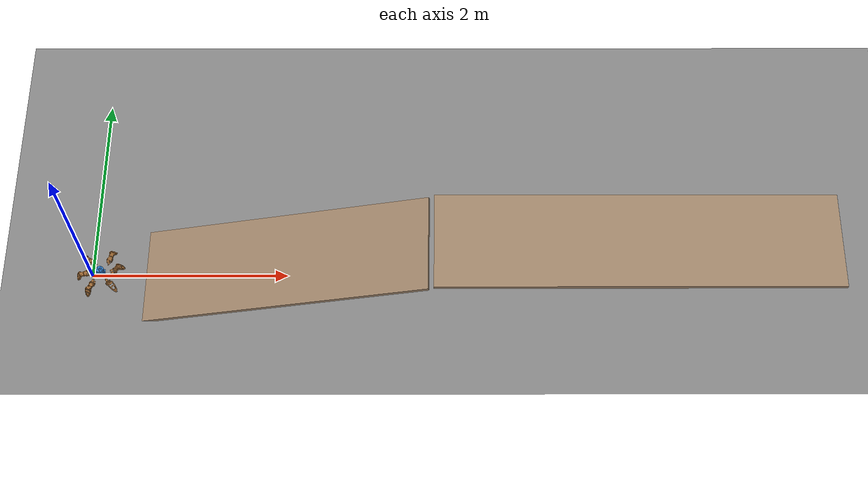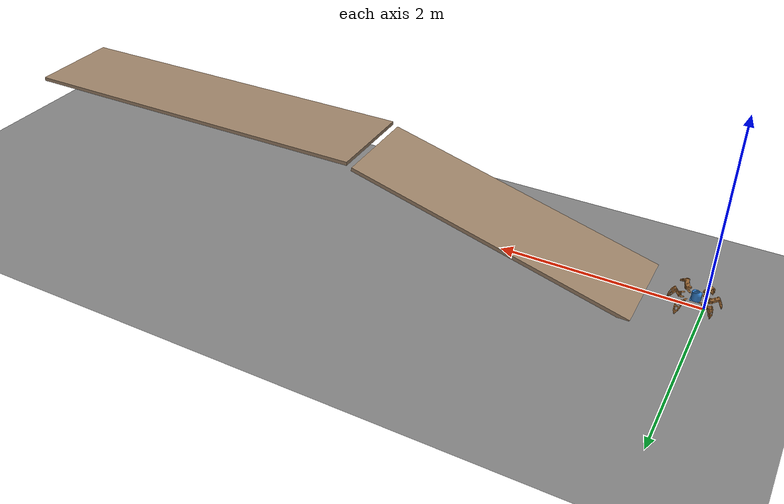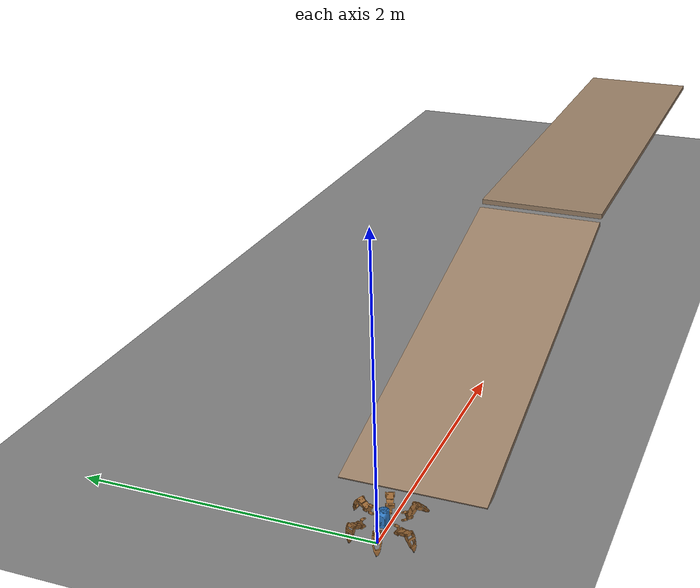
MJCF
<mujoco model="hexapod_urdf">
  <!-- 临时开启惯性自动计算：�?geom/mesh 自动推断 -->
  <compiler angle="degree" inertiafromgeom="true" autolimits="true"/>
  <option timestep="0.01" gravity="0 0 -9.81" integrator="Euler"/>

  <visual>
    <global realtime="1" />
    <quality shadowsize="16384" numslices="28" offsamples="4" />
    <headlight diffuse="1 1 1" specular="0.5 0.5 0.5" active="1" />
    <rgba fog="0 0 0 1" haze="0 1 0 1" />
  </visual>

  <asset>
    <texture name="plane" type="2d" builtin="checker" rgb1=".1 .1 .1" rgb2=".9 .9 .9"
      width="512" height="512" mark="cross" markrgb=".8 .8 .8" />
    <material name="plane" reflectance="0.3" texture="plane" texrepeat="1 1" texuniform="true"/>
    <mesh name="base_link_mesh" file="meshes/base_link.obj"/>
    <mesh name="Link_11_mesh" file="meshes/Link_11.obj"/>
    <mesh name="Link_12_mesh" file="meshes/Link_12.obj"/>
    <mesh name="Link_13_mesh" file="meshes/Link_13.obj"/>
    <mesh name="Link_21_mesh" file="meshes/Link_21.obj"/>
    <mesh name="Link_22_mesh" file="meshes/Link_22.obj"/>
    <mesh name="Link_23_mesh" file="meshes/Link_23.obj"/>
    <mesh name="Link_31_mesh" file="meshes/Link_31.obj"/>
    <mesh name="Link_32_mesh" file="meshes/Link_32.obj"/>
    <mesh name="Link_33_mesh" file="meshes/Link_33.obj"/>
    <mesh name="Link_41_mesh" file="meshes/Link_41.obj"/>
    <mesh name="Link_42_mesh" file="meshes/Link_42.obj"/>
    <mesh name="Link_43_mesh" file="meshes/Link_43.obj"/>
    <mesh name="Link_51_mesh" file="meshes/Link_51.obj"/>
    <mesh name="Link_52_mesh" file="meshes/Link_52.obj"/>
    <mesh name="Link_53_mesh" file="meshes/Link_53.obj"/>
    <mesh name="Link_61_mesh" file="meshes/Link_61.obj"/>
    <mesh name="Link_62_mesh" file="meshes/Link_62.obj"/>
    <mesh name="Link_63_mesh" file="meshes/Link_63.obj"/>
  </asset>

  <default>
    <!-- Enhanced friction for stair climbing: prevent slipping on stairs -->
    <geom friction="3.0 0.1 0.001" rgba="0.8 0.6 0.4 1" contype="1" conaffinity="1"/>
    <joint armature="0.01" damping="0.3" frictionloss="0"/>
    <motor ctrllimited="true" ctrlrange="-3 3"/>
  </default>

  <worldbody>
    <geom name="ground" type="plane" pos="0 0 0" size="10 10 0.1" rgba="0.5 0.5 0.5 0.5" material="plane"/>
    <light directional="true" diffuse="0.8 0.8 0.8" specular="0.3 0.3 0.3" pos="0 0 5"/>

    <!-- Ramp: slope angle 15deg, length 3.0m, starts at X=0.5m -->
    <!-- Z ranges from 0 to 3.0 * tan(15deg) = 0.804m -->
    <body name="slope" pos="2.0 0 0.37">
      <geom type="box" size="1.5 0.5 0.02" pos="0 0 0" euler="0 -15 0" rgba="0.6 0.5 0.4 1" friction="3.0 0.1 0.001" contype="1" conaffinity="1"/>
    </body>

    <!-- Top platform: flat area at height 0.804m after slope -->
    <body name="platform" pos="3.5 0 0.804">
      <geom type="box" size="2.0 0.5 0.02" pos="2.0 0 0" rgba="0.6 0.5 0.4 1" friction="3.0 0.1 0.001" contype="1" conaffinity="1"/>
    </body>

    <!-- Robot root node: moved slightly away from stair start with appropriate height -->
    <!-- pos="0.1 0 0.08": x=0.1 gives more space, z=0.08 provides proper standing height -->
    <body name="robot_root" pos="0.1 0 0.08">
      <joint name="base_freejoint" type="free"/>

      <!-- Torso (base_link) -->
      <body name="torso" pos="0 0 0">
        <!-- Mass 124g, inertia estimated based on 0.25x0.2x0.05m box -->
        <geom type="mesh" mesh="base_link_mesh" rgba="0.2 0.5 0.8 1"/>
        <!-- IMU mounting point -->
        <site name="imu_site" type="box" size="0.01 0.01 0.01" pos="0 0 0.01" rgba="0 1 0 0.5"/>

        <!-- ========== Leg 1 (Right Front) ========== -->
        <body name="leg1_link1" pos="-0.06194699 -0.09917894 -0.00419996" euler="0 0 180">
          <geom type="mesh" mesh="Link_11_mesh" rgba="0.6 0.4 0.2 1"/>
          <joint name="Joint_11" type="hinge" axis="0 0 1" range="-180 180"/>
          <body name="leg1_link2" pos="-0.00839013 0.05139288 0.02635" euler="0 0 -23.06">
            <geom type="mesh" mesh="Link_12_mesh" rgba="0.6 0.4 0.2 1"/>
            <joint name="Joint_12" type="hinge" axis="1 0 0" range="-180 180"/>
            <body name="leg1_link3" pos="-0.00080176 0.06294203 0.01826994" euler="0 0 0">
              <geom type="mesh" mesh="Link_13_mesh" rgba="0.6 0.4 0.2 1"/>
              <joint name="Joint_13" type="hinge" axis="1 0 0" range="-180 180"/>
              <!-- Foot tip body at the end of tibia link -->
              <body name="leg1_foot" pos="0.0328 0.0452 -0.0985">
                <geom name="foot1_geom" type="sphere" size="0.005" rgba="0.3 0.3 0.3 1" friction="2.0 0.1 0.001"/>
              </body>
            </body>
          </body>
        </body>

        <!-- ========== Leg 2 (Right Middle) ========== -->
        <body name="leg2_link1" pos="-0.1050637 -0.00172385 -0.00419996" euler="0 0 180">
          <geom type="mesh" mesh="Link_21_mesh" rgba="0.6 0.4 0.2 1"/>
          <joint name="Joint_21" type="hinge" axis="0 0 1" range="-180 180"/>
          <body name="leg2_link2" pos="0.03040753 0.04227297 0.02635" euler="0 0 -68.07">
            <geom type="mesh" mesh="Link_22_mesh" rgba="0.6 0.4 0.2 1"/>
            <joint name="Joint_22" type="hinge" axis="1 0 0" range="-180 180"/>
            <body name="leg2_link3" pos="-0.0008018 0.06031259 0.02564918" euler="0 0 0">
              <geom type="mesh" mesh="Link_23_mesh" rgba="0.6 0.4 0.2 1"/>
              <joint name="Joint_23" type="hinge" axis="1 0 0" range="-180 180"/>
              <!-- Foot tip body at the end of tibia link -->
              <body name="leg2_foot" pos="0.0328 0.0401 -0.1007">
                <geom name="foot2_geom" type="sphere" size="0.005" rgba="0.3 0.3 0.3 1" friction="2.0 0.1 0.001"/>
              </body>
            </body>
          </body>
        </body>

        <!-- ========== Leg 3 (Right Rear) ========== -->
        <body name="leg3_link1" pos="-0.06527939 0.09703534 -0.00419996" euler="0 0 180">
          <geom type="mesh" mesh="Link_31_mesh" rgba="0.6 0.4 0.2 1"/>
          <joint name="Joint_31" type="hinge" axis="0 0 1" range="-180 180"/>
          <body name="leg3_link2" pos="0.05139288 0.00839013 0.02635" euler="0 0 -113.0">
            <geom type="mesh" mesh="Link_32_mesh" rgba="0.6 0.4 0.2 1"/>
            <joint name="Joint_32" type="hinge" axis="1 0 0" range="-180 180"/>
            <body name="leg3_link3" pos="-0.00080098 0.05798786 0.03054341" euler="0 0 0">
              <geom type="mesh" mesh="Link_33_mesh" rgba="0.6 0.4 0.2 1"/>
              <joint name="Joint_33" type="hinge" axis="1 0 0" range="-180 180"/>
              <!-- Foot tip body at the end of tibia link -->
              <body name="leg3_foot" pos="0.0328 0.0215 -0.1062">
                <geom name="foot3_geom" type="sphere" size="0.005" rgba="0.3 0.3 0.3 1" friction="2.0 0.1 0.001"/>
              </body>
            </body>
          </body>
        </body>

        <!-- ========== Leg 4 (Left Front) ========== -->
        <body name="leg4_link1" pos="0.06194483 0.09919603 -0.00419996" euler="0 0 180">
          <geom type="mesh" mesh="Link_41_mesh" rgba="0.6 0.4 0.2 1"/>
          <joint name="Joint_41" type="hinge" axis="0 0 1" range="-180 180"/>
          <body name="leg4_link2" pos="-0.0428592 -0.02957553 0.02635" euler="0 0 -23.06">
            <geom type="mesh" mesh="Link_42_mesh" rgba="0.6 0.4 0.2 1"/>
            <joint name="Joint_42" type="hinge" axis="1 0 0" range="-180 180"/>
            <body name="leg4_link3" pos="0.00110166 -0.0596456 0.02716413" euler="0 0 0">
              <geom type="mesh" mesh="Link_43_mesh" rgba="0.6 0.4 0.2 1"/>
              <joint name="Joint_43" type="hinge" axis="1 0 0" range="-180 180"/>
              <!-- Foot tip body at the end of tibia link -->
              <body name="leg4_foot" pos="0.0312 -0.0495 -0.0964">
                <geom name="foot4_geom" type="sphere" size="0.005" rgba="0.3 0.3 0.3 1" friction="2.0 0.1 0.001"/>
              </body>
            </body>
          </body>
        </body>

        <!-- ========== Leg 5 (Left Middle) ========== -->
        <body name="leg5_link1" pos="0.1050421 0.00174096 -0.00109996" euler="0 0 180">
          <geom type="mesh" mesh="Link_51_mesh" rgba="0.6 0.4 0.2 1"/>
          <joint name="Joint_51" type="hinge" axis="0 0 1" range="-180 180"/>
          <body name="leg5_link2" pos="-0.05121925 0.00939304 0.0232496" euler="0 0 -68.07">
            <geom type="mesh" mesh="Link_52_mesh" rgba="0.6 0.4 0.2 1"/>
            <joint name="Joint_52" type="hinge" axis="1 0 0" range="-180 180"/>
            <body name="leg5_link3" pos="-0.00049955 -0.03535101 0.05518876" euler="0 0 0">
              <geom type="mesh" mesh="Link_53_mesh" rgba="0.6 0.4 0.2 1"/>
              <joint name="Joint_53" type="hinge" axis="1 0 0" range="-180 180"/>
              <!-- Foot tip body at the end of tibia link -->
              <body name="leg5_foot" pos="0.0328 -0.0592 -0.0908">
                <geom name="foot5_geom" type="sphere" size="0.005" rgba="0.3 0.3 0.3 1" friction="2.0 0.1 0.001"/>
              </body>
            </body>
          </body>
        </body>

        <!-- ========== Leg 6 (Left Rear) ========== -->
        <body name="leg6_link1" pos="0.06527723 -0.09701822 -0.00419996" euler="0 0 180">
          <geom type="mesh" mesh="Link_61_mesh" rgba="0.6 0.4 0.2 1"/>
          <joint name="Joint_61" type="hinge" axis="0 0 1" range="-180 180"/>
          <body name="leg6_link2" pos="-0.00986268 0.05113081 0.02634979" euler="0 0 -136.8">
            <geom type="mesh" mesh="Link_62_mesh" rgba="0.6 0.4 0.2 1"/>
            <joint name="Joint_62" type="hinge" axis="1 0 0" range="-180 180"/>
            <body name="leg6_link3" pos="-0.00049875 -0.03652645 0.05441795" euler="0 0 0">
              <geom type="mesh" mesh="Link_63_mesh" rgba="0.6 0.4 0.2 1"/>
              <joint name="Joint_63" type="hinge" axis="1 0 0" range="-180 180"/>
              <!-- Foot tip body at the end of tibia link -->
              <body name="leg6_foot" pos="0.0328 -0.0875 -0.0640">
                <geom name="foot6_geom" type="sphere" size="0.005" rgba="0.3 0.3 0.3 1" friction="2.0 0.1 0.001"/>
              </body>
            </body>
          </body>
        </body>
      </body>
    </body>
  </worldbody>

  <actuator>
    <!-- Enhanced KP values: from 50 to 100 for more precise joint position control -->
    <!-- Leg 1 -->
    <position joint="Joint_11" name="Joint_11_servo" kp="100" ctrlrange="-2.5 2.5"/>
    <position joint="Joint_12" name="Joint_12_servo" kp="100" ctrlrange="-3 3"/>
    <position joint="Joint_13" name="Joint_13_servo" kp="100" ctrlrange="-3 2"/>
    <!-- Leg 2 -->
    <position joint="Joint_21" name="Joint_21_servo" kp="100" ctrlrange="-2.5 2.5"/>
    <position joint="Joint_22" name="Joint_22_servo" kp="100" ctrlrange="-3 3"/>
    <position joint="Joint_23" name="Joint_23_servo" kp="100" ctrlrange="-3 2"/>
    <!-- Leg 3 -->
    <position joint="Joint_31" name="Joint_31_servo" kp="100" ctrlrange="-2.5 2.5"/>
    <position joint="Joint_32" name="Joint_32_servo" kp="100" ctrlrange="-3 3"/>
    <position joint="Joint_33" name="Joint_33_servo" kp="100" ctrlrange="-3 2"/>
    <!-- Leg 4 -->
    <position joint="Joint_41" name="Joint_41_servo" kp="100" ctrlrange="-2.5 2.5"/>
    <position joint="Joint_42" name="Joint_42_servo" kp="100" ctrlrange="-3 3"/>
    <position joint="Joint_43" name="Joint_43_servo" kp="100" ctrlrange="-3 2"/>
    <!-- Leg 5 -->
    <position joint="Joint_51" name="Joint_51_servo" kp="100" ctrlrange="-2.5 2.5"/>
    <position joint="Joint_52" name="Joint_52_servo" kp="100" ctrlrange="-3 3"/>
    <position joint="Joint_53" name="Joint_53_servo" kp="100" ctrlrange="-3 2"/>
    <!-- Leg 6 -->
    <position joint="Joint_61" name="Joint_61_servo" kp="100" ctrlrange="-2.5 2.5"/>
    <position joint="Joint_62" name="Joint_62_servo" kp="100" ctrlrange="-3 3"/>
    <position joint="Joint_63" name="Joint_63_servo" kp="100" ctrlrange="-3 2"/>
  </actuator>

  <sensor>
    <framequat name="imu_orientation" objtype="site" objname="imu_site"/>
    <accelerometer name="imu_accelerometer" site="imu_site"/>
    <gyro name="imu_gyro" site="imu_site"/>
  </sensor>
</mujoco>
